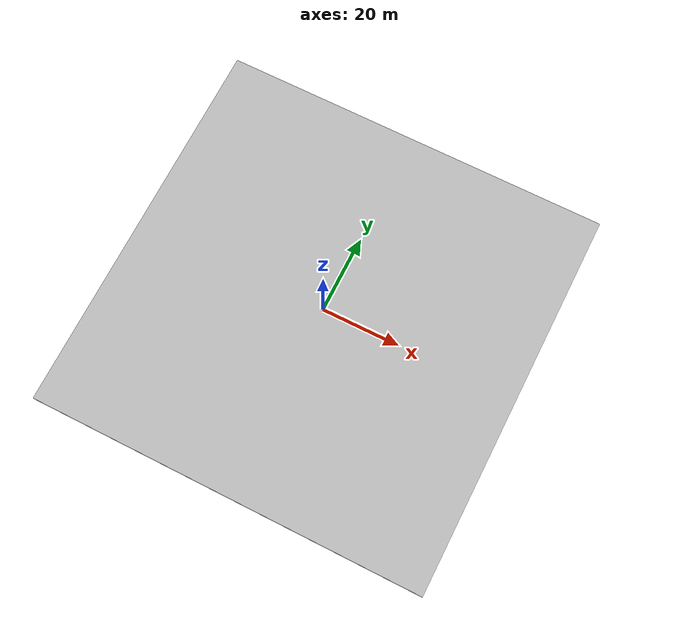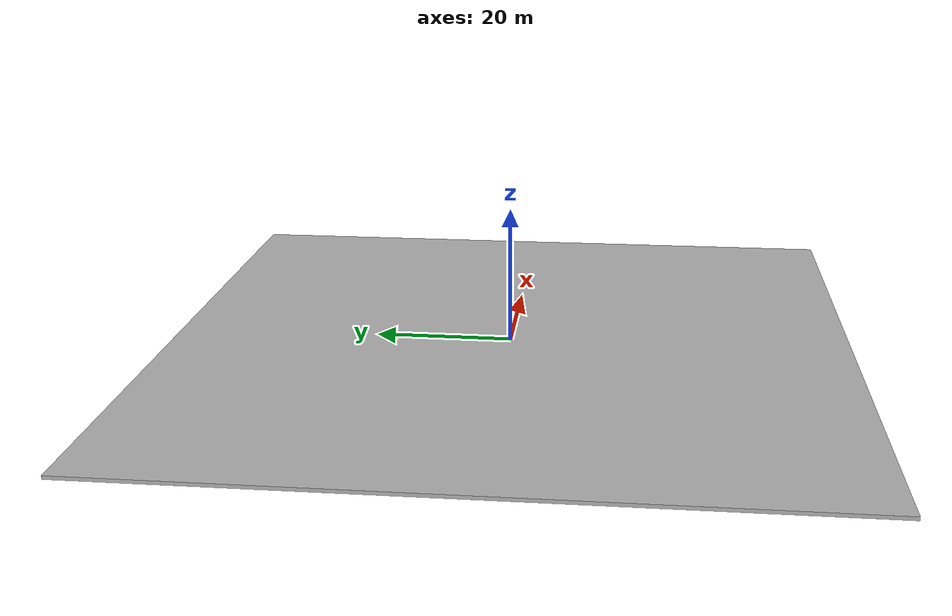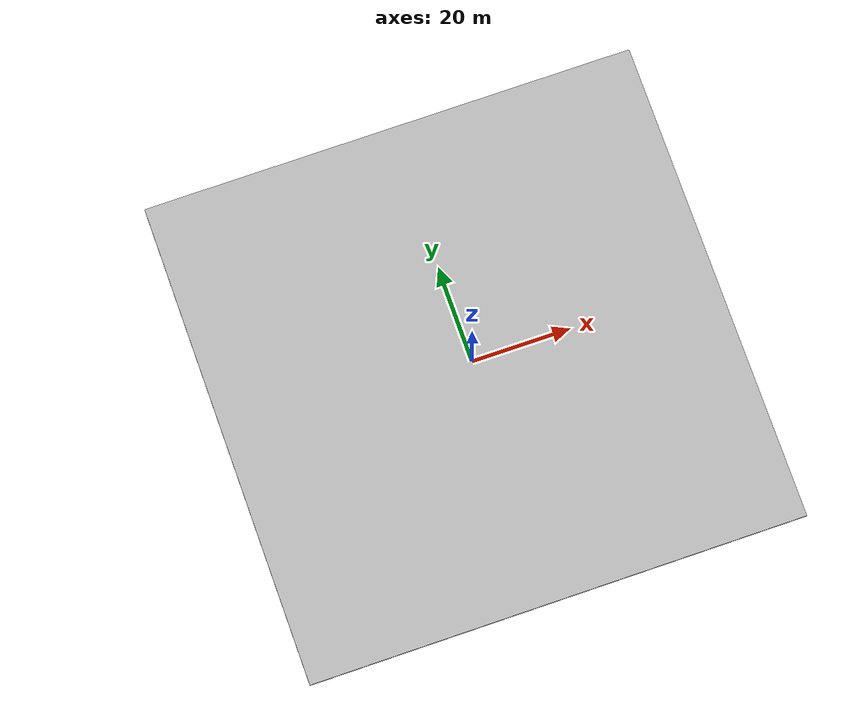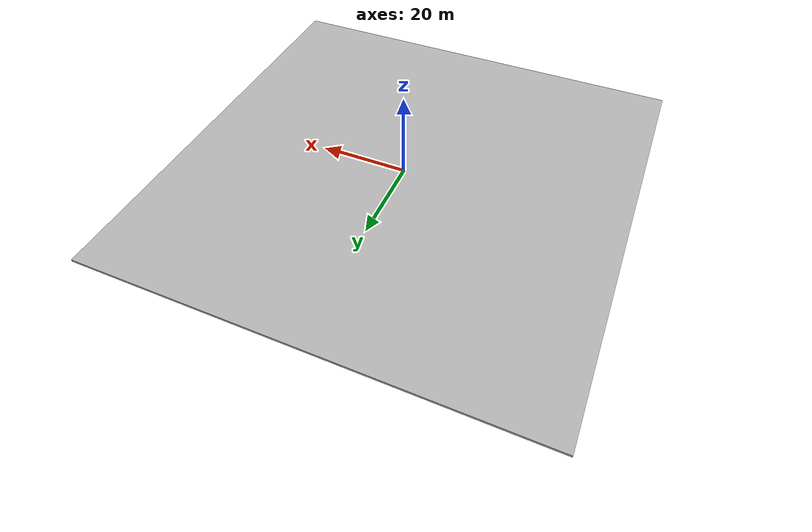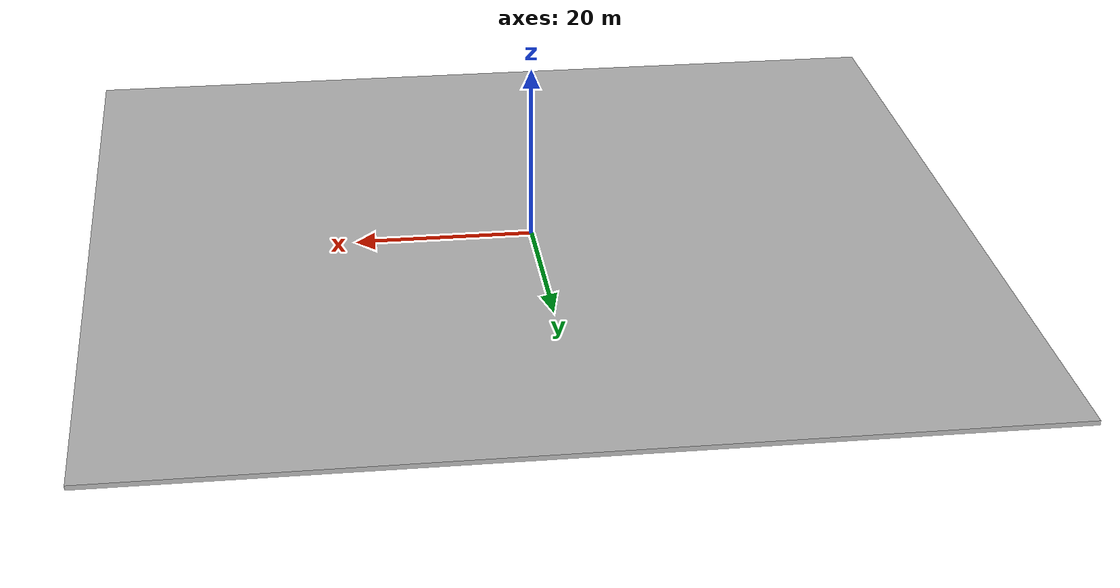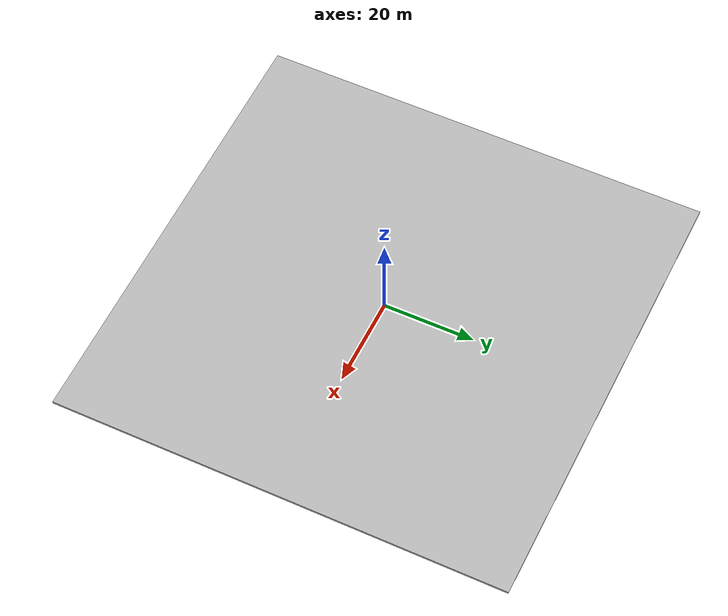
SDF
<?xml version="1.0" ?>

<sdf version="1.6">
  <world name="empty">

    <include>
      <uri>model://sun</uri>
    </include>

    <include>
      <uri>model://moon_surface</uri>
    </include>

  </world>
</sdf>

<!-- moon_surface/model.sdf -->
<sdf version="1.6">
  <model name="moon_surface">
    <static>true</static>

    <link name="link">
      <pose>0 0 0.003 0 0 0</pose>

      <visual name="visual1">
        <cast_shadows>false</cast_shadows>
        <geometry>
          <mesh><uri>model://moon_surface/meshes/moon_surface.dae</uri></mesh>
        </geometry>
        <material>
          <shader type='pixel'/>
        </material>
        <pose>0 0 0 0 0 0</pose>
        <transparency>0</transparency>
      </visual>
    </link>
  </model>
</sdf>
